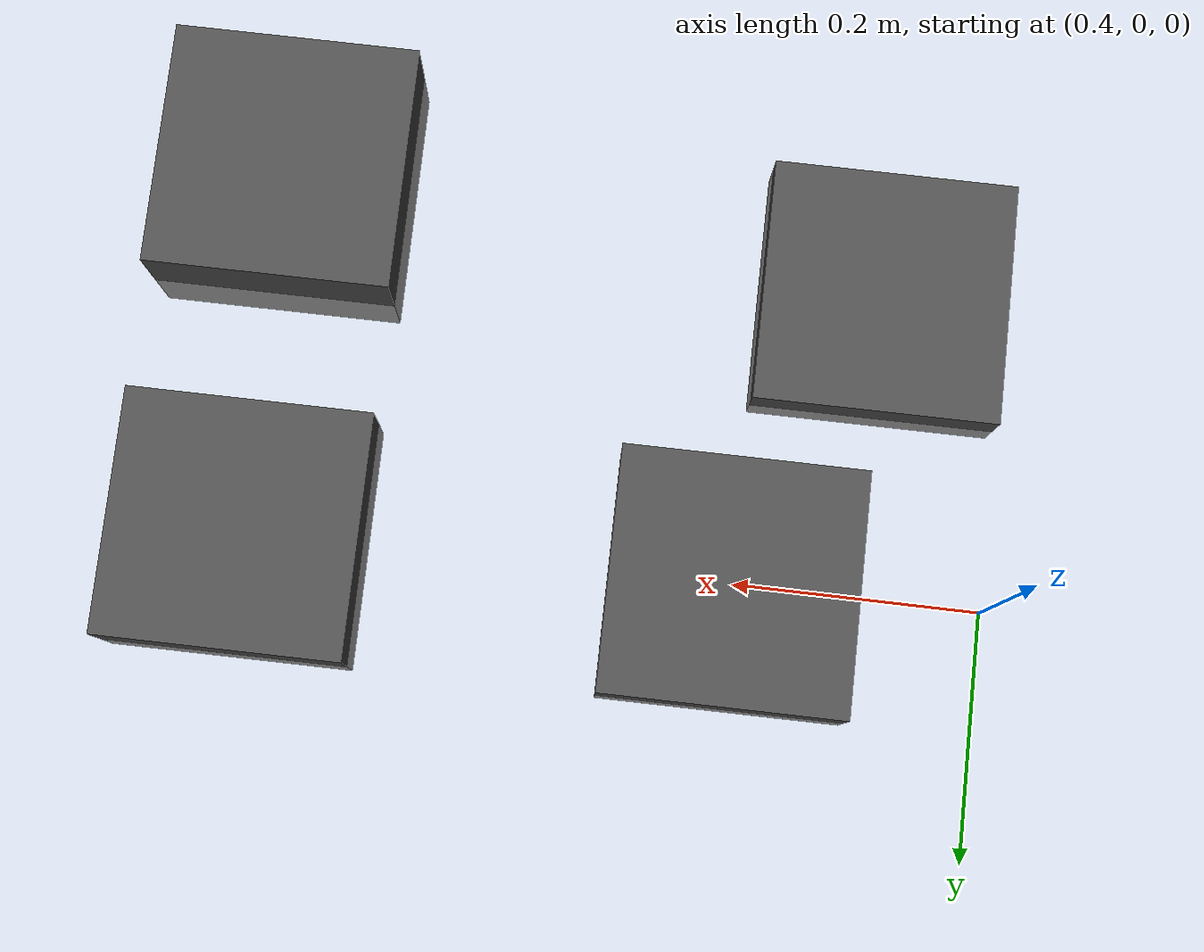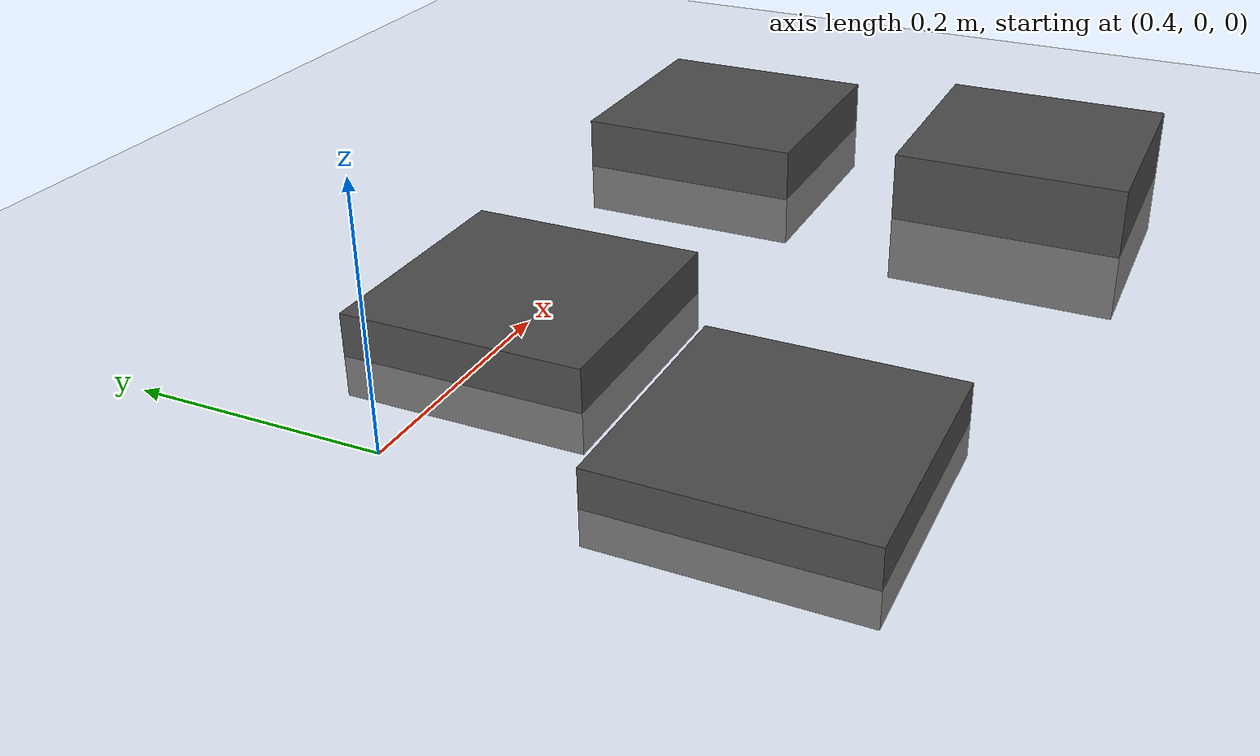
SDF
<sdf version="1.4">
 <world name="default">
  <light name="sun" type="directional">
   <pose>0 0 10 0 -0 0</pose>
   <diffuse>0.8 0.8 0.8 1</diffuse>
   <specular>0.2 0.2 0.2 1</specular>
   <attenuation>
    <range>1000</range>
    <constant>0.9</constant>
    <linear>0.01</linear>
    <quadratic>0.001</quadratic>
   </attenuation>
   <direction>-0.5 0.1 -0.9</direction>
  </light>
  <model name="ground_plane">
   <static>1</static>
   <link name="link">
    <collision name="collision">
     <geometry><plane><normal>0 0 1</normal><size>100 100</size></plane></geometry>
     <surface>
      <friction><ode><mu>10000</mu><mu2>10000</mu2></ode><bullet><mu>10000</mu><mu2>10000</mu2></bullet></friction>
     </surface>
    </collision>
    <visual name="visual">
     <cast_shadows>0</cast_shadows>
     <geometry><plane><normal>0 0 1</normal><size>1000 1000</size></plane></geometry>
     <material>
      <script><uri>file://media/materials/scripts/gazebo.material</uri><name>Gazebo/Grey</name></script>
     </material>
    </visual>
    <velocity_decay><linear>0</linear><angular>0</angular></velocity_decay>
   </link>
  </model>
  <model name="cube_6cm">
   <link name="link">
    <pose>0.5 -0.25 0 0 -0 0</pose>
    <inertial>
     <mass>1</mass>
     <inertia>
      <ixx>0.166667</ixx>
      <ixy>0</ixy>
      <ixz>0</ixz>
      <iyy>0.166667</iyy>
      <iyz>0</iyz>
      <izz>0.166667</izz>
     </inertia>
    </inertial>
    <visual name="visual">
     <geometry><box><size>0.2 0.2 0.06</size></box></geometry>
     <material>
      <script><uri>file://media/materials/scripts/gazebo.material</uri><name>Gazebo/DarkGrey</name></script>
      <ambient>0.3 0.3 0.3 1</ambient>
      <diffuse>0.7 0.7 0.7 1</diffuse>
      <specular>0.01 0.01 0.01 1</specular>
      <emissive>0 0 0 1</emissive>
     </material>
    </visual>
    <collision name="collision">
     <geometry><box><size>0.2 0.2 0.06</size></box></geometry>
     <surface>
      <friction>
       <ode><mu>1</mu><mu2>1</mu2><fdir1>0 0 0</fdir1><slip1>0</slip1><slip2>0</slip2></ode>
       <torsional>
        <coefficient>1</coefficient>
        <patch_radius>0</patch_radius>
        <surface_radius>0</surface_radius>
        <use_patch_radius>1</use_patch_radius>
        <ode><slip>0</slip></ode>
       </torsional>
      </friction>
      <bounce><restitution_coefficient>0</restitution_coefficient><threshold>1e+06</threshold></bounce>
      <contact>
       <collide_without_contact>0</collide_without_contact>
       <collide_without_contact_bitmask>1</collide_without_contact_bitmask>
       <collide_bitmask>1</collide_bitmask>
       <ode>
        <soft_cfm>0</soft_cfm>
        <soft_erp>0.2</soft_erp>
        <kp>2.1e+9</kp>
        <kd>1</kd>
        <max_vel>0.0</max_vel>
        <min_depth>0</min_depth>
       </ode>
       <bullet>
        <split_impulse>1</split_impulse>
        <split_impulse_penetration_threshold>-0.01</split_impulse_penetration_threshold>
        <soft_cfm>0</soft_cfm>
        <soft_erp>0.2</soft_erp>
        <kp>1e+13</kp>
        <kd>1</kd>
       </bullet>
      </contact>
     </surface>
    </collision>
   </link>
   <static>0</static>
  </model>
  <model name="cube_7cm">
   <link name="link">
    <pose>0.6 -0.0 0 0 -0 0</pose>
    <inertial>
     <mass>1</mass>
     <inertia>
      <ixx>0.166667</ixx>
      <ixy>0</ixy>
      <ixz>0</ixz>
      <iyy>0.166667</iyy>
      <iyz>0</iyz>
      <izz>0.166667</izz>
     </inertia>
    </inertial>
    <visual name="visual">
     <geometry><box><size>0.2 0.2 0.07</size></box></geometry>
     <material>
      <script><uri>file://media/materials/scripts/gazebo.material</uri><name>Gazebo/DarkGrey</name></script>
      <ambient>0.3 0.3 0.3 1</ambient>
      <diffuse>0.7 0.7 0.7 1</diffuse>
      <specular>0.01 0.01 0.01 1</specular>
      <emissive>0 0 0 1</emissive>
     </material>
    </visual>
    <collision name="collision">
     <geometry><box><size>0.2 0.2 0.07</size></box></geometry>
     <surface>
      <friction>
       <ode><mu>1</mu><mu2>1</mu2><fdir1>0 0 0</fdir1><slip1>0</slip1><slip2>0</slip2></ode>
       <torsional>
        <coefficient>1</coefficient>
        <patch_radius>0</patch_radius>
        <surface_radius>0</surface_radius>
        <use_patch_radius>1</use_patch_radius>
        <ode><slip>0</slip></ode>
       </torsional>
      </friction>
      <bounce><restitution_coefficient>0</restitution_coefficient><threshold>1e+06</threshold></bounce>
      <contact>
       <collide_without_contact>0</collide_without_contact>
       <collide_without_contact_bitmask>1</collide_without_contact_bitmask>
       <collide_bitmask>1</collide_bitmask>
       <ode>
        <soft_cfm>0</soft_cfm>
        <soft_erp>0.2</soft_erp>
        <kp>1e+13</kp>
        <kd>1</kd>
        <max_vel>0.01</max_vel>
        <min_depth>0</min_depth>
       </ode>
       <bullet>
        <split_impulse>1</split_impulse>
        <split_impulse_penetration_threshold>-0.01</split_impulse_penetration_threshold>
        <soft_cfm>0</soft_cfm>
        <soft_erp>0.2</soft_erp>
        <kp>2.1e+9</kp>
        <kd>1</kd>
       </bullet>
      </contact>
     </surface>
    </collision>
   </link>
   <static>0</static>
  </model>
  <model name="cube_9cm">
   <link name="link">
    <pose>1.0 -0.0 0 0 -0 0</pose>
    <inertial>
     <mass>1</mass>
     <inertia>
      <ixx>0.166667</ixx>
      <ixy>0</ixy>
      <ixz>0</ixz>
      <iyy>0.166667</iyy>
      <iyz>0</iyz>
      <izz>0.166667</izz>
     </inertia>
    </inertial>
    <visual name="visual">
     <geometry><box><size>0.2 0.2 0.09</size></box></geometry>
     <material>
      <script><uri>file://media/materials/scripts/gazebo.material</uri><name>Gazebo/DarkGrey</name></script>
      <ambient>0.3 0.3 0.3 1</ambient>
      <diffuse>0.7 0.7 0.7 1</diffuse>
      <specular>0.01 0.01 0.01 1</specular>
      <emissive>0 0 0 1</emissive>
     </material>
    </visual>
    <collision name="collision">
     <geometry><box><size>0.2 0.2 0.09</size></box></geometry>
     <surface>
      <friction>
       <ode><mu>1</mu><mu2>1</mu2><fdir1>0 0 0</fdir1><slip1>0</slip1><slip2>0</slip2></ode>
       <torsional>
        <coefficient>1</coefficient>
        <patch_radius>0</patch_radius>
        <surface_radius>0</surface_radius>
        <use_patch_radius>1</use_patch_radius>
        <ode><slip>0</slip></ode>
       </torsional>
      </friction>
      <bounce><restitution_coefficient>0</restitution_coefficient><threshold>1e+06</threshold></bounce>
      <contact>
       <collide_without_contact>0</collide_without_contact>
       <collide_without_contact_bitmask>1</collide_without_contact_bitmask>
       <collide_bitmask>1</collide_bitmask>
       <ode>
        <soft_cfm>0</soft_cfm>
        <soft_erp>0.2</soft_erp>
        <kp>2.1e+9</kp>
        <kd>1</kd>
        <max_vel>0.01</max_vel>
        <min_depth>0</min_depth>
       </ode>
       <bullet>
        <split_impulse>1</split_impulse>
        <split_impulse_penetration_threshold>-0.01</split_impulse_penetration_threshold>
        <soft_cfm>0</soft_cfm>
        <soft_erp>0.2</soft_erp>
        <kp>1e+13</kp>
        <kd>1</kd>
       </bullet>
      </contact>
     </surface>
    </collision>
   </link>
   <static>0</static>
  </model>
  <model name="cube_12cm">
   <link name="link">
    <pose>1.0 -0.3 0 0 -0 0</pose>
    <inertial>
     <mass>1</mass>
     <inertia>
      <ixx>0.166667</ixx>
      <ixy>0</ixy>
      <ixz>0</ixz>
      <iyy>0.166667</iyy>
      <iyz>0</iyz>
      <izz>0.166667</izz>
     </inertia>
    </inertial>
    <visual name="visual">
     <geometry><box><size>0.2 0.2 0.12</size></box></geometry>
     <material>
      <script><uri>file://media/materials/scripts/gazebo.material</uri><name>Gazebo/DarkGrey</name></script>
      <ambient>0.3 0.3 0.3 1</ambient>
      <diffuse>0.7 0.7 0.7 1</diffuse>
      <specular>0.01 0.01 0.01 1</specular>
      <emissive>0 0 0 1</emissive>
     </material>
    </visual>
    <collision name="collision">
     <geometry><box><size>0.2 0.2 0.12</size></box></geometry>
     <surface>
      <friction>
       <ode><mu>1</mu><mu2>1</mu2><fdir1>0 0 0</fdir1><slip1>0</slip1><slip2>0</slip2></ode>
       <torsional>
        <coefficient>1</coefficient>
        <patch_radius>0</patch_radius>
        <surface_radius>0</surface_radius>
        <use_patch_radius>1</use_patch_radius>
        <ode><slip>0</slip></ode>
       </torsional>
      </friction>
      <bounce><restitution_coefficient>0</restitution_coefficient><threshold>1e+06</threshold></bounce>
      <contact>
       <collide_without_contact>0</collide_without_contact>
       <collide_without_contact_bitmask>1</collide_without_contact_bitmask>
       <collide_bitmask>1</collide_bitmask>
       <ode>
        <soft_cfm>0</soft_cfm>
        <soft_erp>0.2</soft_erp>
        <kp>1e+13</kp>
        <kd>1</kd>
        <max_vel>0.01</max_vel>
        <min_depth>0</min_depth>
       </ode>
       <bullet>
        <split_impulse>1</split_impulse>
        <split_impulse_penetration_threshold>-0.01</split_impulse_penetration_threshold>
        <soft_cfm>0</soft_cfm>
        <soft_erp>0.2</soft_erp>
        <kp>2.1e+9</kp>
        <kd>1</kd>
       </bullet>
      </contact>
     </surface>
    </collision>
   </link>
   <static>0</static>
  </model>
  <physics type="ode">
   <simbody>
    <accuracy>0.005</accuracy>
    <max_transient_velocity>0.005</max_transient_velocity>
    <contact><stiffness>1e8</stiffness><dissipation>20.0</dissipation></contact>
   </simbody>
   <ode><solver><iters>250</iters></solver></ode>
   <max_step_size>0.001</max_step_size>
   <real_time_factor>1</real_time_factor>
   <real_time_update_rate>1000</real_time_update_rate>
   <gravity>0 0 -9.8</gravity>
  </physics>
  <scene><ambient>0.4 0.4 0.4 1</ambient><background>0.7 0.7 0.7 1</background><shadows>1</shadows></scene>
  <spherical_coordinates>
   <surface_model>EARTH_WGS84</surface_model>
   <latitude_deg>0</latitude_deg>
   <longitude_deg>0</longitude_deg>
   <elevation>0</elevation>
   <heading_deg>0</heading_deg>
  </spherical_coordinates>
 </world>
</sdf>
